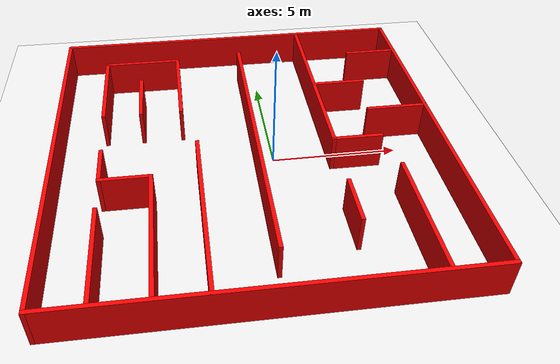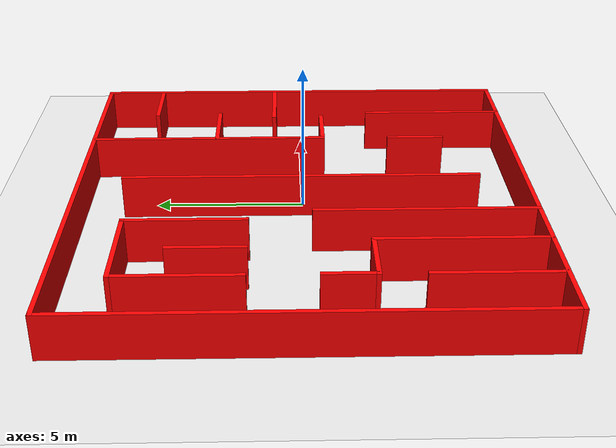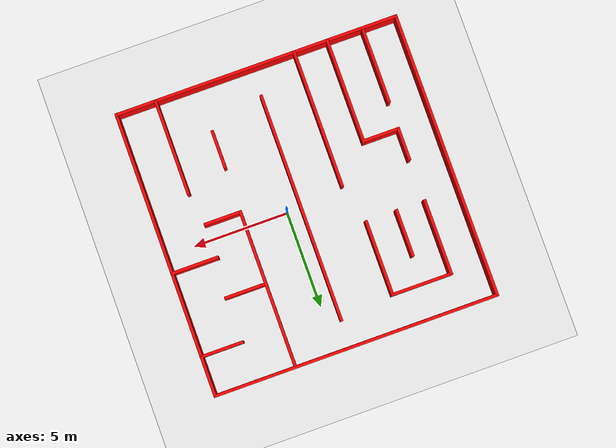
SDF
<sdf version="1.4">
 <world name="default">
  <light name="sun" type="directional">
   <pose>0 0 10 0 -0 0</pose>
   <diffuse>0.8 0.8 0.8 1</diffuse>
   <specular>0.2 0.2 0.2 1</specular>
   <attenuation>
    <range>1000</range>
    <constant>0.9</constant>
    <linear>0.01</linear>
    <quadratic>0.001</quadratic>
   </attenuation>
   <direction>-0.5 0.1 -0.9</direction>
  </light>
  <model name="ground_plane">
   <static>1</static>
   <link name="link">
    <collision name="collision">
     <geometry><plane><normal>0 0 1</normal><size>100 100</size></plane></geometry>
     <surface><friction><ode><mu>100</mu><mu2>50</mu2></ode></friction></surface>
    </collision>
    <visual name="visual">
     <cast_shadows>0</cast_shadows>
     <geometry><plane><normal>0 0 1</normal><size>100 100</size></plane></geometry>
     <material>
      <script><uri>file://media/materials/scripts/gazebo.material</uri><name>Gazebo/White</name></script>
     </material>
    </visual>
    <velocity_decay><linear>0</linear><angular>0</angular></velocity_decay>
   </link>
  </model>
  <physics type="ode">
   <max_step_size>0.001</max_step_size>
   <real_time_factor>1</real_time_factor>
   <real_time_update_rate>1000</real_time_update_rate>
   <gravity>0 0 -9.8</gravity>
  </physics>
  <scene><ambient>0.4 0.4 0.4 1</ambient><background>0.7 0.7 0.7 1</background><shadows>0</shadows></scene>
  <spherical_coordinates>
   <surface_model>EARTH_WGS84</surface_model>
   <latitude_deg>0</latitude_deg>
   <longitude_deg>0</longitude_deg>
   <elevation>0</elevation>
   <heading_deg>0</heading_deg>
  </spherical_coordinates>
  <model name="test_space_1">
   <pose>-1 0 -0.48301 0 -0 0</pose>
   <link name="Wall_0">
    <collision name="Wall_0_Collision">
     <geometry><box><size>15 0.15 1.5</size></box></geometry>
     <pose>0 0 1.25 0 -0 0</pose>
    </collision>
    <visual name="Wall_0_Visual">
     <pose>0 0 1.25 0 -0 0</pose>
     <geometry><box><size>15 0.15 1.5</size></box></geometry>
     <material>
      <script><uri>file://media/materials/scripts/gazebo.material</uri><name>Gazebo/Grey</name></script>
      <ambient>1 0 0 1</ambient>
     </material>
    </visual>
    <pose>0 7.425 0 0 -0 0</pose>
    <velocity_decay><linear>0</linear><angular>0</angular></velocity_decay>
   </link>
   <link name="Wall_1">
    <collision name="Wall_1_Collision">
     <geometry><box><size>15 0.15 1.5</size></box></geometry>
     <pose>0 0 1.25 0 -0 0</pose>
    </collision>
    <visual name="Wall_1_Visual">
     <pose>0 0 1.25 0 -0 0</pose>
     <geometry><box><size>15 0.15 1.5</size></box></geometry>
     <material>
      <script><uri>file://media/materials/scripts/gazebo.material</uri><name>Gazebo/Grey</name></script>
      <ambient>1 0 0 1</ambient>
     </material>
    </visual>
    <pose>7.425 0 0 0 0 -1.5708</pose>
    <velocity_decay><linear>0</linear><angular>0</angular></velocity_decay>
   </link>
   <link name="Wall_13">
    <collision name="Wall_13_Collision">
     <geometry><box><size>8.25 0.15 1.5</size></box></geometry>
     <pose>0 0 1.25 0 -0 0</pose>
    </collision>
    <visual name="Wall_13_Visual">
     <pose>0 0 1.25 0 -0 0</pose>
     <geometry><box><size>8.25 0.15 1.5</size></box></geometry>
     <material>
      <script><uri>file://media/materials/scripts/gazebo.material</uri><name>Gazebo/Grey</name></script>
      <ambient>1 0 0 1</ambient>
     </material>
    </visual>
    <pose>3.20863 3.28922 0 0 0 -1.5708</pose>
    <velocity_decay><linear>0</linear><angular>0</angular></velocity_decay>
   </link>
   <link name="Wall_16">
    <collision name="Wall_16_Collision">
     <geometry><box><size>2 0.15 1.5</size></box></geometry>
     <pose>0 0 1.25 0 -0 0</pose>
    </collision>
    <visual name="Wall_16_Visual">
     <pose>0 0 1.25 0 -0 0</pose>
     <geometry><box><size>2 0.15 1.5</size></box></geometry>
     <material>
      <script><uri>file://media/materials/scripts/gazebo.material</uri><name>Gazebo/Grey</name></script>
      <ambient>1 0 0 1</ambient>
     </material>
    </visual>
    <pose>3.1855 -4.08707 0 0 0 -1.5708</pose>
    <velocity_decay><linear>0</linear><angular>0</angular></velocity_decay>
   </link>
   <link name="Wall_19">
    <collision name="Wall_19_Collision">
     <geometry><box><size>2.25 0.15 1.5</size></box></geometry>
     <pose>0 0 1.25 0 -0 0</pose>
    </collision>
    <visual name="Wall_19_Visual">
     <pose>0 0 1.25 0 -0 0</pose>
     <geometry><box><size>2.25 0.15 1.5</size></box></geometry>
     <material>
      <script><uri>file://media/materials/scripts/gazebo.material</uri><name>Gazebo/Grey</name></script>
      <ambient>1 0 0 1</ambient>
     </material>
    </visual>
    <pose>6.34273 5.37034 0 0 -0 3.14159</pose>
    <velocity_decay><linear>0</linear><angular>0</angular></velocity_decay>
   </link>
   <link name="Wall_2">
    <collision name="Wall_2_Collision">
     <geometry><box><size>15 0.15 1.5</size></box></geometry>
     <pose>0 0 1.25 0 -0 0</pose>
    </collision>
    <visual name="Wall_2_Visual">
     <pose>0 0 1.25 0 -0 0</pose>
     <geometry><box><size>15 0.15 1.5</size></box></geometry>
     <material>
      <script><uri>file://media/materials/scripts/gazebo.material</uri><name>Gazebo/Grey</name></script>
      <ambient>1 0 0 1</ambient>
     </material>
    </visual>
    <pose>0 -7.425 0 0 -0 3.14159</pose>
    <velocity_decay><linear>0</linear><angular>0</angular></velocity_decay>
   </link>
   <link name="Wall_21">
    <collision name="Wall_21_Collision">
     <geometry><box><size>2.25 0.15 1.5</size></box></geometry>
     <pose>0 0 1.25 0 -0 0</pose>
    </collision>
    <visual name="Wall_21_Visual">
     <pose>0 0 1.25 0 -0 0</pose>
     <geometry><box><size>2.25 0.15 1.5</size></box></geometry>
     <material>
      <script><uri>file://media/materials/scripts/gazebo.material</uri><name>Gazebo/Grey</name></script>
      <ambient>1 0 0 1</ambient>
     </material>
    </visual>
    <pose>4.26164 3.03124 0 0 -0 0</pose>
    <velocity_decay><linear>0</linear><angular>0</angular></velocity_decay>
   </link>
   <link name="Wall_25">
    <collision name="Wall_25_Collision">
     <geometry><box><size>2.5 0.15 1.5</size></box></geometry>
     <pose>0 0 1.25 0 -0 0</pose>
    </collision>
    <visual name="Wall_25_Visual">
     <pose>0 0 1.25 0 -0 0</pose>
     <geometry><box><size>2.5 0.15 1.5</size></box></geometry>
     <material>
      <script><uri>file://media/materials/scripts/gazebo.material</uri><name>Gazebo/Grey</name></script>
      <ambient>1 0 0 1</ambient>
     </material>
    </visual>
    <pose>6.23636 0.989556 0 0 -0 3.14159</pose>
    <velocity_decay><linear>0</linear><angular>0</angular></velocity_decay>
   </link>
   <link name="Wall_27">
    <collision name="Wall_27_Collision">
     <geometry><box><size>2 0.15 1.5</size></box></geometry>
     <pose>0 0 1.25 0 -0 0</pose>
    </collision>
    <visual name="Wall_27_Visual">
     <pose>0 0 1.25 0 -0 0</pose>
     <geometry><box><size>2 0.15 1.5</size></box></geometry>
     <material>
      <script><uri>file://media/materials/scripts/gazebo.material</uri><name>Gazebo/Grey</name></script>
      <ambient>1 0 0 1</ambient>
     </material>
    </visual>
    <pose>4.13363 -0.760776 0 0 -0 0</pose>
    <velocity_decay><linear>0</linear><angular>0</angular></velocity_decay>
   </link>
   <link name="Wall_3">
    <collision name="Wall_3_Collision">
     <geometry><box><size>15 0.15 1.5</size></box></geometry>
     <pose>0 0 1.25 0 -0 0</pose>
    </collision>
    <visual name="Wall_3_Visual">
     <pose>0 0 1.25 0 -0 0</pose>
     <geometry><box><size>15 0.15 1.5</size></box></geometry>
     <material>
      <script><uri>file://media/materials/scripts/gazebo.material</uri><name>Gazebo/Grey</name></script>
      <ambient>1 0 0 1</ambient>
     </material>
    </visual>
    <pose>-7.425 0 0 0 -0 1.5708</pose>
    <velocity_decay><linear>0</linear><angular>0</angular></velocity_decay>
   </link>
   <link name="Wall_30">
    <collision name="Wall_30_Collision">
     <geometry><box><size>3.25 0.15 1.5</size></box></geometry>
     <pose>0 0 1.25 0 -0 0</pose>
    </collision>
    <visual name="Wall_30_Visual">
     <pose>0 0 1.25 0 -0 0</pose>
     <geometry><box><size>3.25 0.15 1.5</size></box></geometry>
     <material>
      <script><uri>file://media/materials/scripts/gazebo.material</uri><name>Gazebo/Grey</name></script>
      <ambient>1 0 0 1</ambient>
     </material>
    </visual>
    <pose>-4.08517 5.66019 0 0 -0 3.14159</pose>
    <velocity_decay><linear>0</linear><angular>0</angular></velocity_decay>
   </link>
   <link name="Wall_31">
    <collision name="Wall_31_Collision">
     <geometry><box><size>4 0.15 1.5</size></box></geometry>
     <pose>0 0 1.25 0 -0 0</pose>
    </collision>
    <visual name="Wall_31_Visual">
     <pose>0 0 1.25 0 -0 0</pose>
     <geometry><box><size>4 0.15 1.5</size></box></geometry>
     <material>
      <script><uri>file://media/materials/scripts/gazebo.material</uri><name>Gazebo/Grey</name></script>
      <ambient>1 0 0 1</ambient>
     </material>
    </visual>
    <pose>-5.63517 3.7352 0 0 0 -1.5708</pose>
    <velocity_decay><linear>0</linear><angular>0</angular></velocity_decay>
   </link>
   <link name="Wall_33">
    <collision name="Wall_33_Collision">
     <geometry><box><size>2.5 0.15 1.5</size></box></geometry>
     <pose>0 0 1.25 0 -0 0</pose>
    </collision>
    <visual name="Wall_33_Visual">
     <pose>0 0 1.25 0 -0 0</pose>
     <geometry><box><size>2.5 0.15 1.5</size></box></geometry>
     <material>
      <script><uri>file://media/materials/scripts/gazebo.material</uri><name>Gazebo/Grey</name></script>
      <ambient>1 0 0 1</ambient>
     </material>
    </visual>
    <pose>-4.14617 2.97675 0 0 0 -1.5708</pose>
    <velocity_decay><linear>0</linear><angular>0</angular></velocity_decay>
   </link>
   <link name="Wall_35">
    <collision name="Wall_35_Collision">
     <geometry><box><size>12 0.15 1.5</size></box></geometry>
     <pose>0 0 1.25 0 -0 0</pose>
    </collision>
    <visual name="Wall_35_Visual">
     <pose>0 0 1.25 0 -0 0</pose>
     <geometry><box><size>12 0.15 1.5</size></box></geometry>
     <material>
      <script><uri>file://media/materials/scripts/gazebo.material</uri><name>Gazebo/Grey</name></script>
      <ambient>1 0 0 1</ambient>
     </material>
    </visual>
    <pose>0.28326 0.053605 0 0 0 -1.5708</pose>
    <velocity_decay><linear>0</linear><angular>0</angular></velocity_decay>
   </link>
   <link name="Wall_37">
    <collision name="Wall_37_Collision">
     <geometry><box><size>5 0.15 1.5</size></box></geometry>
     <pose>0 0 1.25 0 -0 0</pose>
    </collision>
    <visual name="Wall_37_Visual">
     <pose>0 0 1.25 0 -0 0</pose>
     <geometry><box><size>5 0.15 1.5</size></box></geometry>
     <material>
      <script><uri>file://media/materials/scripts/gazebo.material</uri><name>Gazebo/Grey</name></script>
      <ambient>1 0 0 1</ambient>
     </material>
    </visual>
    <pose>5.349 -4.95966 0 0 0 -1.5708</pose>
    <velocity_decay><linear>0</linear><angular>0</angular></velocity_decay>
   </link>
   <link name="Wall_39">
    <collision name="Wall_39_Collision">
     <geometry><box><size>5.5 0.15 1.5</size></box></geometry>
     <pose>0 0 1.25 0 -0 0</pose>
    </collision>
    <visual name="Wall_39_Visual">
     <pose>0 0 1.25 0 -0 0</pose>
     <geometry><box><size>5.5 0.15 1.5</size></box></geometry>
     <material>
      <script><uri>file://media/materials/scripts/gazebo.material</uri><name>Gazebo/Grey</name></script>
      <ambient>1 0 0 1</ambient>
     </material>
    </visual>
    <pose>-3.7672 -4.71432 0 0 -0 1.5708</pose>
    <velocity_decay><linear>0</linear><angular>0</angular></velocity_decay>
   </link>
   <link name="Wall_48">
    <collision name="Wall_48_Collision">
     <geometry><box><size>2 0.15 1.5</size></box></geometry>
     <pose>0 0 1.25 0 -0 0</pose>
    </collision>
    <visual name="Wall_48_Visual">
     <pose>0 0 1.25 0 -0 0</pose>
     <geometry><box><size>2 0.15 1.5</size></box></geometry>
     <material>
      <script><uri>file://media/materials/scripts/gazebo.material</uri><name>Gazebo/Grey</name></script>
      <ambient>1 0 0 1</ambient>
     </material>
    </visual>
    <pose>-4.6922 -2.03932 0 0 -0 3.14159</pose>
    <velocity_decay><linear>0</linear><angular>0</angular></velocity_decay>
   </link>
   <link name="Wall_49">
    <collision name="Wall_49_Collision">
     <geometry><box><size>1.75 0.15 1.5</size></box></geometry>
     <pose>0 0 1.25 0 -0 0</pose>
    </collision>
    <visual name="Wall_49_Visual">
     <pose>0 0 1.25 0 -0 0</pose>
     <geometry><box><size>1.75 0.15 1.5</size></box></geometry>
     <material>
      <script><uri>file://media/materials/scripts/gazebo.material</uri><name>Gazebo/Grey</name></script>
      <ambient>1 0 0 1</ambient>
     </material>
    </visual>
    <pose>-5.6172 -1.23933 0 0 -0 1.5708</pose>
    <velocity_decay><linear>0</linear><angular>0</angular></velocity_decay>
   </link>
   <link name="Wall_5">
    <collision name="Wall_5_Collision">
     <geometry><box><size>4 0.15 1.5</size></box></geometry>
     <pose>0 0 1.25 0 -0 0</pose>
    </collision>
    <visual name="Wall_5_Visual">
     <pose>0 0 1.25 0 -0 0</pose>
     <geometry><box><size>4 0.15 1.5</size></box></geometry>
     <material>
      <script><uri>file://media/materials/scripts/gazebo.material</uri><name>Gazebo/Grey</name></script>
      <ambient>1 0 0 1</ambient>
     </material>
    </visual>
    <pose>-2.53517 3.7352 0 0 0 -1.5708</pose>
    <velocity_decay><linear>0</linear><angular>0</angular></velocity_decay>
   </link>
   <link name="Wall_51">
    <collision name="Wall_51_Collision">
     <geometry><box><size>4 0.15 1.5</size></box></geometry>
     <pose>0 0 1.25 0 -0 0</pose>
    </collision>
    <visual name="Wall_51_Visual">
     <pose>0 0 1.25 0 -0 0</pose>
     <geometry><box><size>4 0.15 1.5</size></box></geometry>
     <material>
      <script><uri>file://media/materials/scripts/gazebo.material</uri><name>Gazebo/Grey</name></script>
      <ambient>1 0 0 1</ambient>
     </material>
    </visual>
    <pose>-5.64009 -5.4353 0 0 0 -1.5708</pose>
    <velocity_decay><linear>0</linear><angular>0</angular></velocity_decay>
   </link>
   <link name="Wall_7">
    <collision name="Wall_7_Collision">
     <geometry><box><size>7.25 0.15 1.5</size></box></geometry>
     <pose>0 0 1.25 0 -0 0</pose>
    </collision>
    <visual name="Wall_7_Visual">
     <pose>0 0 1.25 0 -0 0</pose>
     <geometry><box><size>7.25 0.15 1.5</size></box></geometry>
     <material>
      <script><uri>file://media/materials/scripts/gazebo.material</uri><name>Gazebo/Grey</name></script>
      <ambient>1 0 0 1</ambient>
     </material>
    </visual>
    <pose>-2.01164 -3.87059 0 0 0 -1.5708</pose>
    <velocity_decay><linear>0</linear><angular>0</angular></velocity_decay>
   </link>
   <static>1</static>
  </model>
 </world>
</sdf>
